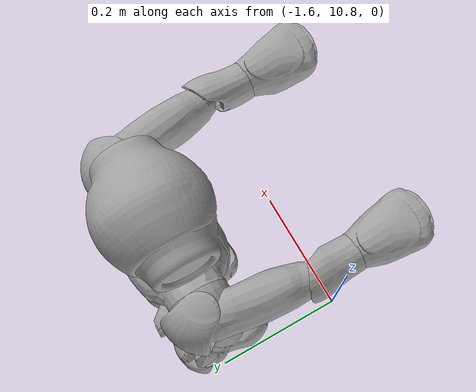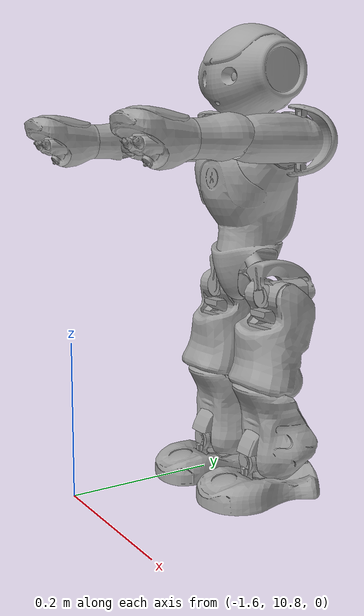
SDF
<sdf version="1.4">
  <model name="teamA_2">

    <!-- A robot -->
    <pose>-1.5 11 0 0 0 -1.57</pose>
    <include>
      <uri>model://nao_meshes</uri>
    </include>

    <!-- Joint used to lock the model to the world when needed -->
    <joint name="world_joint" type="revolute">
      <parent>world</parent>
      <child>Nao::base_link</child>
      <axis>
        <xyz>0 0 1</xyz>
        <limit>
          <upper>0</upper>
          <lower>0</lower>
        </limit>
      </axis>
    </joint>

    <plugin name="agent_plugin" filename="librobocup_agent_plugin.so">
      <robot_namespace>teamA_2</robot_namespace>
      <view_angle>120</view_angle>
      <head_link>Nao::HeadPitchLink</head_link>
      <imu_sensor>Nao::base_link::imu_sensor</imu_sensor>
      <force_sensor>Nao::RAnkleRollLink::right_foot_contact</force_sensor>
      <force_sensor>Nao::LAnkleRollLink::left_foot_contact</force_sensor>
    </plugin>

    <!-- Load a plugin to control the sphere with Hydra -->
  </model>
</sdf>
